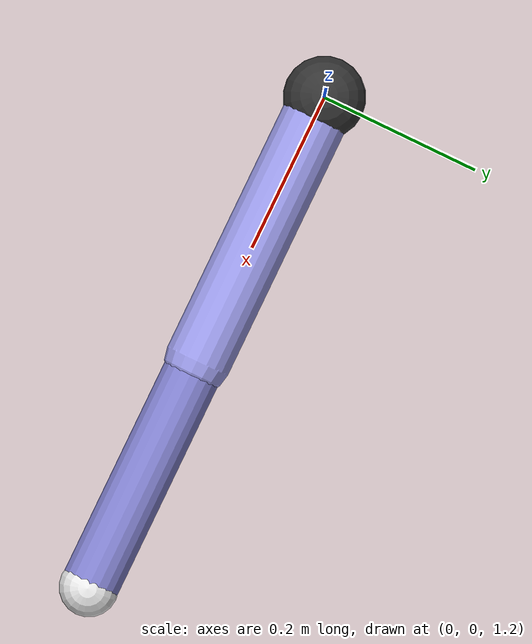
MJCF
<mujoco model="throw_arm">
  <compiler angle="degree"/>
  <option gravity="0 0 -9.81" timestep="0.002"/>

  <default>
    <joint damping="0.3" armature="0.01" margin="0.035"
           solreflimit="0.002 1" solimplimit="0.99 0.9999 0.0001 0.5 2"/>
    <geom contype="1" conaffinity="1" friction="0.9 0.005 0.0001"/>
  </default>

  <worldbody>
    <light diffuse="0.6 0.6 0.6" pos="0 0 4" dir="0 0 -1"/>
    <light diffuse="0.3 0.3 0.3" pos="3 -3 3" dir="-1 1 -1"/>

    <geom name="ground" type="plane" size="20 5 0.1" rgba="0.3 0.5 0.3 1"/>

    <!-- target landing zone marker, visual only -->
    <geom name="target_zone" type="box" pos="7.0 0 0.002" size="1.0 0.6 0.002"
          rgba="0.9 0.2 0.2 0.4" contype="0" conaffinity="0"/>

    <body name="shoulder_mount" pos="0 0 1.2">
      <geom type="sphere" size="0.05" rgba="0.2 0.2 0.2 1" contype="0" conaffinity="0"/>
      <body name="upper_arm" pos="0 0 0">
        <joint name="shoulder" type="hinge" axis="0 1 0" range="95 380" pos="0 0 0"/>
        <geom type="capsule" fromto="0 0 0 0.35 0 0" size="0.04" rgba="0.6 0.6 0.9 1"/>
        <body name="forearm" pos="0.35 0 0">
          <joint name="elbow" type="hinge" axis="0 1 0" range="0 160" pos="0 0 0"/>
          <geom type="capsule" fromto="0 0 0 0.3 0 0" size="0.035" rgba="0.5 0.5 0.8 1"/>
          <site name="hand" pos="0.3 0 0" size="0.02"/>
        </body>
      </body>
    </body>

    <body name="ball" pos="0.65 0 1.2">
      <freejoint name="ball_free"/>
      <geom name="ball_geom" type="sphere" size="0.036" mass="0.16" rgba="0.9 0.9 0.9 1"/>
    </body>
  </worldbody>

  <contact>
    <exclude body1="ball" body2="forearm"/>
  </contact>
  <equality>
    <weld name="grip" body1="ball" body2="forearm" solref="0.002 1" solimp="0.95 0.99 0.001 0.5 2"/>
  </equality>

  <actuator>
    <motor name="shoulder_motor" joint="shoulder" gear="40" ctrlrange="-1 1"/>
    <motor name="elbow_motor" joint="elbow" gear="30" ctrlrange="-1 1"/>
  </actuator>
</mujoco>
